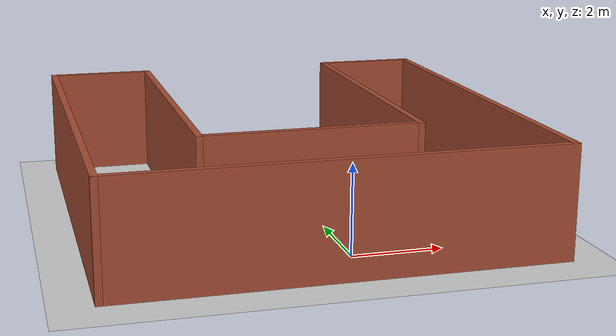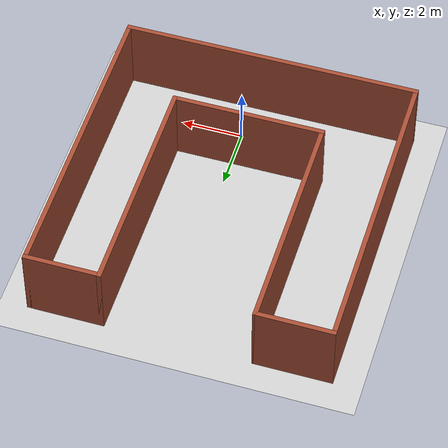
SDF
<sdf version="1.6">
 <world name="default">
  <light name="sun" type="directional">
   <pose>0 0 10 0 -0 0</pose>
   <diffuse>0.8 0.8 0.8 1</diffuse>
   <specular>0.2 0.2 0.2 1</specular>
   <attenuation>
    <range>1000</range>
    <constant>0.9</constant>
    <linear>0.01</linear>
    <quadratic>0.001</quadratic>
   </attenuation>
   <direction>-0.5 0.1 -0.9</direction>
  </light>
  <model name="ground_plane">
   <static>1</static>
   <link name="link">
    <collision name="collision">
     <geometry><plane><normal>0 0 1</normal><size>100 100</size></plane></geometry>
     <surface>
      <contact><collide_bitmask>65535</collide_bitmask></contact>
      <friction><ode><mu>100</mu><mu2>50</mu2></ode></friction>
     </surface>
    </collision>
    <visual name="visual">
     <cast_shadows>0</cast_shadows>
     <geometry><plane><normal>0 0 1</normal><size>100 100</size></plane></geometry>
     <material>
      <script><uri>file://media/materials/scripts/gazebo.material</uri><name>Gazebo/Grey</name></script>
     </material>
    </visual>
   </link>
  </model>
  <gravity>0 0 -9.8</gravity>
  <magnetic_field>6e-06 2.3e-05 -4.2e-05</magnetic_field>
  <atmosphere type="adiabatic"/>
  <physics name="default_physics" default="0" type="ode">
   <max_step_size>0.001</max_step_size>
   <real_time_factor>1</real_time_factor>
   <real_time_update_rate>1000</real_time_update_rate>
  </physics>
  <scene><ambient>0.4 0.4 0.4 1</ambient><background>0.7 0.7 0.7 1</background><shadows>1</shadows></scene>
  <spherical_coordinates>
   <surface_model>EARTH_WGS84</surface_model>
   <latitude_deg>0</latitude_deg>
   <longitude_deg>0</longitude_deg>
   <elevation>0</elevation>
   <heading_deg>0</heading_deg>
  </spherical_coordinates>
  <model name="HomeServiceRoboWorld">
   <pose>-0.561423 3.54423 0 0 -0 0</pose>
   <link name="Wall_10">
    <collision name="Wall_10_Collision">
     <geometry><box><size>7.5 0.15 2.5</size></box></geometry>
     <pose>0 0 1.25 0 -0 0</pose>
    </collision>
    <visual name="Wall_10_Visual">
     <pose>0 0 1.25 0 -0 0</pose>
     <geometry><box><size>7.5 0.15 2.5</size></box></geometry>
     <material>
      <script><uri>file://media/materials/scripts/gazebo.material</uri><name>Gazebo/Bricks</name></script>
      <ambient>0.760784 0.662745 0.627451 1</ambient>
     </material>
     <meta><layer>0</layer></meta>
    </visual>
    <pose>2.45 1.25 0 0 -0 1.5708</pose>
   </link>
   <link name="Wall_11">
    <collision name="Wall_11_Collision">
     <geometry><box><size>2.5 0.15 2.5</size></box></geometry>
     <pose>0 0 1.25 0 -0 0</pose>
    </collision>
    <visual name="Wall_11_Visual">
     <pose>0 0 1.25 0 -0 0</pose>
     <geometry><box><size>2.5 0.15 2.5</size></box></geometry>
     <material>
      <script><uri>file://media/materials/scripts/gazebo.material</uri><name>Gazebo/Bricks</name></script>
      <ambient>0.760784 0.662745 0.627451 1</ambient>
     </material>
     <meta><layer>0</layer></meta>
    </visual>
    <pose>3.625 4.925 0 0 -0 0</pose>
   </link>
   <link name="Wall_12">
    <collision name="Wall_12_Collision">
     <geometry><box><size>10 0.15 2.5</size></box></geometry>
     <pose>0 0 1.25 0 -0 0</pose>
    </collision>
    <visual name="Wall_12_Visual">
     <pose>0 0 1.25 0 -0 0</pose>
     <geometry><box><size>10 0.15 2.5</size></box></geometry>
     <material>
      <script><uri>file://media/materials/scripts/gazebo.material</uri><name>Gazebo/Bricks</name></script>
      <ambient>0.760784 0.662745 0.627451 1</ambient>
     </material>
     <meta><layer>0</layer></meta>
    </visual>
    <pose>4.8 0 0 0 0 -1.5708</pose>
   </link>
   <link name="Wall_13">
    <collision name="Wall_13_Collision">
     <geometry><box><size>9.75 0.15 2.5</size></box></geometry>
     <pose>0 0 1.25 0 -0 0</pose>
    </collision>
    <visual name="Wall_13_Visual">
     <pose>0 0 1.25 0 -0 0</pose>
     <geometry><box><size>9.75 0.15 2.5</size></box></geometry>
     <material>
      <script><uri>file://media/materials/scripts/gazebo.material</uri><name>Gazebo/Bricks</name></script>
      <ambient>0.760784 0.662745 0.627451 1</ambient>
     </material>
     <meta><layer>0</layer></meta>
    </visual>
    <pose>0 -4.925 0 0 -0 3.14159</pose>
   </link>
   <link name="Wall_17">
    <collision name="Wall_17_Collision">
     <geometry><box><size>10 0.15 2.5</size></box></geometry>
     <pose>0 0 1.25 0 -0 0</pose>
    </collision>
    <visual name="Wall_17_Visual">
     <pose>0 0 1.25 0 -0 0</pose>
     <geometry><box><size>10 0.15 2.5</size></box></geometry>
     <material>
      <script><uri>file://media/materials/scripts/gazebo.material</uri><name>Gazebo/Bricks</name></script>
      <ambient>0.760784 0.662745 0.627451 1</ambient>
     </material>
     <meta><layer>0</layer></meta>
    </visual>
    <pose>-4.8 0 0 0 -0 1.5708</pose>
   </link>
   <link name="Wall_18">
    <collision name="Wall_18_Collision">
     <geometry><box><size>2.55 0.15 2.5</size></box></geometry>
     <pose>0 0 1.25 0 -0 0</pose>
    </collision>
    <visual name="Wall_18_Visual">
     <pose>0 0 1.25 0 -0 0</pose>
     <geometry><box><size>2.55 0.15 2.5</size></box></geometry>
     <material>
      <script><uri>file://media/materials/scripts/gazebo.material</uri><name>Gazebo/Bricks</name></script>
      <ambient>0.760784 0.662745 0.627451 1</ambient>
     </material>
     <meta><layer>0</layer></meta>
    </visual>
    <pose>-3.6 4.925 0 0 -0 0</pose>
   </link>
   <link name="Wall_8">
    <collision name="Wall_8_Collision">
     <geometry><box><size>7.5 0.15 2.5</size></box></geometry>
     <pose>0 0 1.25 0 -0 0</pose>
    </collision>
    <visual name="Wall_8_Visual">
     <pose>0 0 1.25 0 -0 0</pose>
     <geometry><box><size>7.5 0.15 2.5</size></box></geometry>
     <material>
      <script><uri>file://media/materials/scripts/gazebo.material</uri><name>Gazebo/Bricks</name></script>
      <ambient>0.760784 0.662745 0.627451 1</ambient>
     </material>
     <meta><layer>0</layer></meta>
    </visual>
    <pose>-2.4 1.25 0 0 0 -1.5708</pose>
   </link>
   <link name="Wall_9">
    <collision name="Wall_9_Collision">
     <geometry><box><size>5 0.15 2.5</size></box></geometry>
     <pose>0 0 1.25 0 -0 0</pose>
    </collision>
    <visual name="Wall_9_Visual">
     <pose>0 0 1.25 0 -0 0</pose>
     <geometry><box><size>5 0.15 2.5</size></box></geometry>
     <material>
      <script><uri>file://media/materials/scripts/gazebo.material</uri><name>Gazebo/Bricks</name></script>
      <ambient>0.760784 0.662745 0.627451 1</ambient>
     </material>
     <meta><layer>0</layer></meta>
    </visual>
    <pose>0.025 -2.425 0 0 -0 0</pose>
   </link>
   <static>1</static>
  </model>
 </world>
</sdf>
